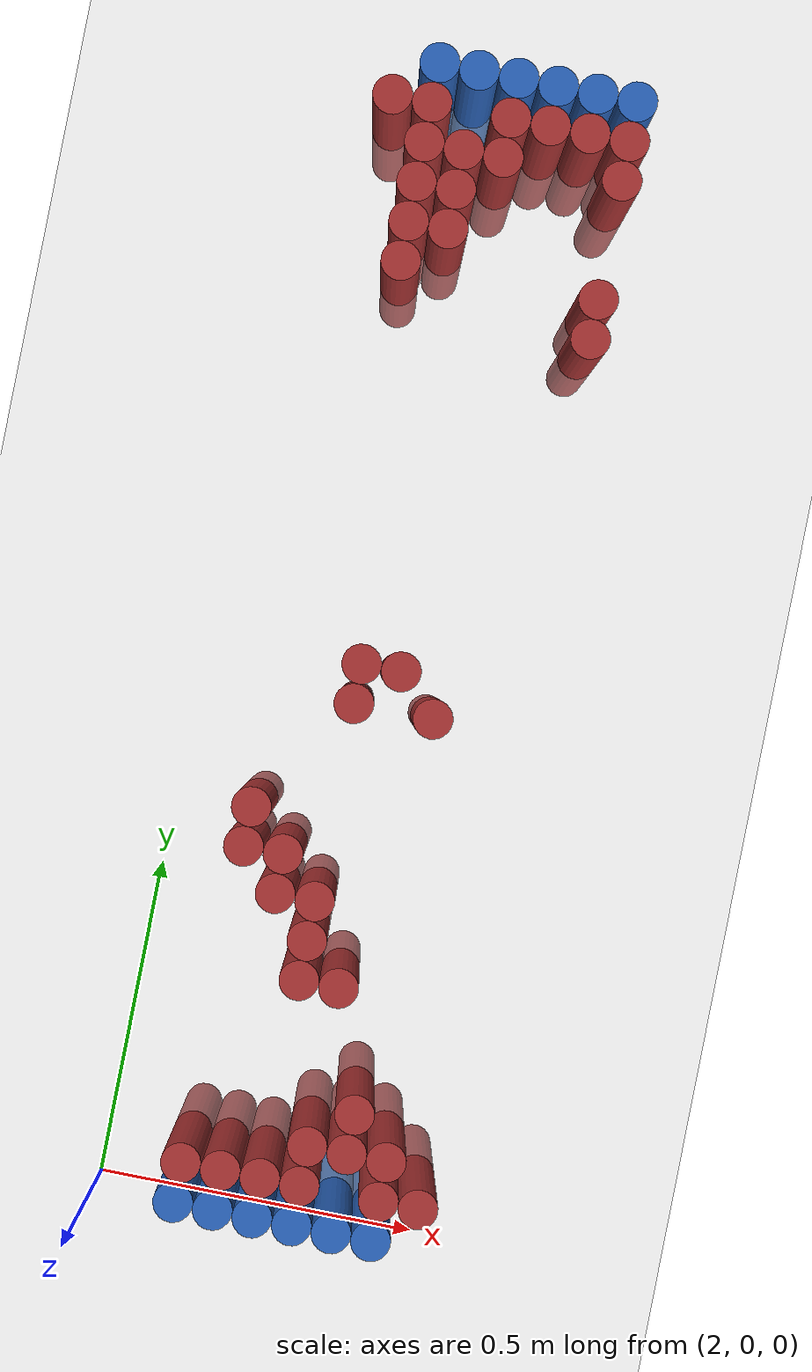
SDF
<sdf version="1.6">
 <world name="default">
  <model name="ground_plane">
   <static>1</static>
   <link name="link">
    <collision name="collision">
     <geometry><plane><normal>0 0 1</normal><size>100 100</size></plane></geometry>
     <surface><friction><ode><mu>100</mu><mu2>50</mu2></ode></friction></surface>
    </collision>
    <visual name="visual">
     <cast_shadows>0</cast_shadows>
     <geometry><plane><normal>0 0 1</normal><size>100 100</size></plane></geometry>
     <material>
      <script><uri>file://media/materials/scripts/gazebo.material</uri><name>Gazebo/Grey</name></script>
     </material>
    </visual>
   </link>
  </model>
  <model name="unit_cylinder_97">
   <static>1</static>
   <pose>2.190000 1.770000 0.000000 0.000000 0.000000 0.000000</pose>
   <link name="link">
    <inertial>
     <mass>1</mass>
     <inertia><ixx>0.145833</ixx><ixy>0</ixy><ixz>0</ixz><iyy>0.145833</iyy><iyz>0</iyz><izz>0.125</izz></inertia>
    </inertial>
    <collision name="collision">
     <geometry><cylinder><radius>0.030000</radius><length>0.5</length></cylinder></geometry>
    </collision>
    <visual name="visual">
     <geometry><cylinder><radius>0.030000</radius><length>0.5</length></cylinder></geometry>
     <material>
      <ambient>0.152000 0.379000 0.720000 1</ambient>
      <diffuse>0.152000 0.379000 0.720000 1</diffuse>
     </material>
     <material>
      <script><name>Gazebo/Grey</name><uri>file://media/materials/scripts/gazebo.material</uri></script>
     </material>
    </visual>
   </link>
  </model>
  <model name="unit_cylinder_98">
   <static>1</static>
   <pose>2.250000 1.770000 0.000000 0.000000 0.000000 0.000000</pose>
   <link name="link">
    <inertial>
     <mass>1</mass>
     <inertia><ixx>0.145833</ixx><ixy>0</ixy><ixz>0</ixz><iyy>0.145833</iyy><iyz>0</iyz><izz>0.125</izz></inertia>
    </inertial>
    <collision name="collision">
     <geometry><cylinder><radius>0.030000</radius><length>0.5</length></cylinder></geometry>
    </collision>
    <visual name="visual">
     <geometry><cylinder><radius>0.030000</radius><length>0.5</length></cylinder></geometry>
     <material>
      <ambient>0.152000 0.379000 0.720000 1</ambient>
      <diffuse>0.152000 0.379000 0.720000 1</diffuse>
     </material>
     <material>
      <script><name>Gazebo/Grey</name><uri>file://media/materials/scripts/gazebo.material</uri></script>
     </material>
    </visual>
   </link>
  </model>
  <model name="unit_cylinder_99">
   <static>1</static>
   <pose>2.310000 1.770000 0.000000 0.000000 0.000000 0.000000</pose>
   <link name="link">
    <inertial>
     <mass>1</mass>
     <inertia><ixx>0.145833</ixx><ixy>0</ixy><ixz>0</ixz><iyy>0.145833</iyy><iyz>0</iyz><izz>0.125</izz></inertia>
    </inertial>
    <collision name="collision">
     <geometry><cylinder><radius>0.030000</radius><length>0.5</length></cylinder></geometry>
    </collision>
    <visual name="visual">
     <geometry><cylinder><radius>0.030000</radius><length>0.5</length></cylinder></geometry>
     <material>
      <ambient>0.152000 0.379000 0.720000 1</ambient>
      <diffuse>0.152000 0.379000 0.720000 1</diffuse>
     </material>
     <material>
      <script><name>Gazebo/Grey</name><uri>file://media/materials/scripts/gazebo.material</uri></script>
     </material>
    </visual>
   </link>
  </model>
  <model name="unit_cylinder_100">
   <static>1</static>
   <pose>2.370000 1.770000 0.000000 0.000000 0.000000 0.000000</pose>
   <link name="link">
    <inertial>
     <mass>1</mass>
     <inertia><ixx>0.145833</ixx><ixy>0</ixy><ixz>0</ixz><iyy>0.145833</iyy><iyz>0</iyz><izz>0.125</izz></inertia>
    </inertial>
    <collision name="collision">
     <geometry><cylinder><radius>0.030000</radius><length>0.5</length></cylinder></geometry>
    </collision>
    <visual name="visual">
     <geometry><cylinder><radius>0.030000</radius><length>0.5</length></cylinder></geometry>
     <material>
      <ambient>0.152000 0.379000 0.720000 1</ambient>
      <diffuse>0.152000 0.379000 0.720000 1</diffuse>
     </material>
     <material>
      <script><name>Gazebo/Grey</name><uri>file://media/materials/scripts/gazebo.material</uri></script>
     </material>
    </visual>
   </link>
  </model>
  <model name="unit_cylinder_101">
   <static>1</static>
   <pose>2.430000 1.770000 0.000000 0.000000 0.000000 0.000000</pose>
   <link name="link">
    <inertial>
     <mass>1</mass>
     <inertia><ixx>0.145833</ixx><ixy>0</ixy><ixz>0</ixz><iyy>0.145833</iyy><iyz>0</iyz><izz>0.125</izz></inertia>
    </inertial>
    <collision name="collision">
     <geometry><cylinder><radius>0.030000</radius><length>0.5</length></cylinder></geometry>
    </collision>
    <visual name="visual">
     <geometry><cylinder><radius>0.030000</radius><length>0.5</length></cylinder></geometry>
     <material>
      <ambient>0.152000 0.379000 0.720000 1</ambient>
      <diffuse>0.152000 0.379000 0.720000 1</diffuse>
     </material>
     <material>
      <script><name>Gazebo/Grey</name><uri>file://media/materials/scripts/gazebo.material</uri></script>
     </material>
    </visual>
   </link>
  </model>
  <model name="unit_cylinder_102">
   <static>1</static>
   <pose>2.490000 1.770000 0.000000 0.000000 0.000000 0.000000</pose>
   <link name="link">
    <inertial>
     <mass>1</mass>
     <inertia><ixx>0.145833</ixx><ixy>0</ixy><ixz>0</ixz><iyy>0.145833</iyy><iyz>0</iyz><izz>0.125</izz></inertia>
    </inertial>
    <collision name="collision">
     <geometry><cylinder><radius>0.030000</radius><length>0.5</length></cylinder></geometry>
    </collision>
    <visual name="visual">
     <geometry><cylinder><radius>0.030000</radius><length>0.5</length></cylinder></geometry>
     <material>
      <ambient>0.152000 0.379000 0.720000 1</ambient>
      <diffuse>0.152000 0.379000 0.720000 1</diffuse>
     </material>
     <material>
      <script><name>Gazebo/Grey</name><uri>file://media/materials/scripts/gazebo.material</uri></script>
     </material>
    </visual>
   </link>
  </model>
  <model name="unit_cylinder_125">
   <static>1</static>
   <pose>2.130000 1.710000 0.000000 0.000000 0.000000 0.000000</pose>
   <link name="link">
    <inertial>
     <mass>1</mass>
     <inertia><ixx>0.145833</ixx><ixy>0</ixy><ixz>0</ixz><iyy>0.145833</iyy><iyz>0</iyz><izz>0.125</izz></inertia>
    </inertial>
    <collision name="collision">
     <geometry><cylinder><radius>0.030000</radius><length>0.5</length></cylinder></geometry>
    </collision>
    <visual name="visual">
     <geometry><cylinder><radius>0.030000</radius><length>0.5</length></cylinder></geometry>
     <material>
      <ambient>0.648000 0.192000 0.192000 1</ambient>
      <diffuse>0.648000 0.192000 0.192000 1</diffuse>
     </material>
     <material>
      <script><name>Gazebo/Grey</name><uri>file://media/materials/scripts/gazebo.material</uri></script>
     </material>
    </visual>
   </link>
  </model>
  <model name="unit_cylinder_126">
   <static>1</static>
   <pose>2.190000 1.710000 0.000000 0.000000 0.000000 0.000000</pose>
   <link name="link">
    <inertial>
     <mass>1</mass>
     <inertia><ixx>0.145833</ixx><ixy>0</ixy><ixz>0</ixz><iyy>0.145833</iyy><iyz>0</iyz><izz>0.125</izz></inertia>
    </inertial>
    <collision name="collision">
     <geometry><cylinder><radius>0.030000</radius><length>0.5</length></cylinder></geometry>
    </collision>
    <visual name="visual">
     <geometry><cylinder><radius>0.030000</radius><length>0.5</length></cylinder></geometry>
     <material>
      <ambient>0.648000 0.192000 0.192000 1</ambient>
      <diffuse>0.648000 0.192000 0.192000 1</diffuse>
     </material>
     <material>
      <script><name>Gazebo/Grey</name><uri>file://media/materials/scripts/gazebo.material</uri></script>
     </material>
    </visual>
   </link>
  </model>
  <model name="unit_cylinder_127">
   <static>1</static>
   <pose>2.310000 1.710000 0.000000 0.000000 0.000000 0.000000</pose>
   <link name="link">
    <inertial>
     <mass>1</mass>
     <inertia><ixx>0.145833</ixx><ixy>0</ixy><ixz>0</ixz><iyy>0.145833</iyy><iyz>0</iyz><izz>0.125</izz></inertia>
    </inertial>
    <collision name="collision">
     <geometry><cylinder><radius>0.030000</radius><length>0.5</length></cylinder></geometry>
    </collision>
    <visual name="visual">
     <geometry><cylinder><radius>0.030000</radius><length>0.5</length></cylinder></geometry>
     <material>
      <ambient>0.648000 0.192000 0.192000 1</ambient>
      <diffuse>0.648000 0.192000 0.192000 1</diffuse>
     </material>
     <material>
      <script><name>Gazebo/Grey</name><uri>file://media/materials/scripts/gazebo.material</uri></script>
     </material>
    </visual>
   </link>
  </model>
  <model name="unit_cylinder_128">
   <static>1</static>
   <pose>2.370000 1.710000 0.000000 0.000000 0.000000 0.000000</pose>
   <link name="link">
    <inertial>
     <mass>1</mass>
     <inertia><ixx>0.145833</ixx><ixy>0</ixy><ixz>0</ixz><iyy>0.145833</iyy><iyz>0</iyz><izz>0.125</izz></inertia>
    </inertial>
    <collision name="collision">
     <geometry><cylinder><radius>0.030000</radius><length>0.5</length></cylinder></geometry>
    </collision>
    <visual name="visual">
     <geometry><cylinder><radius>0.030000</radius><length>0.5</length></cylinder></geometry>
     <material>
      <ambient>0.648000 0.192000 0.192000 1</ambient>
      <diffuse>0.648000 0.192000 0.192000 1</diffuse>
     </material>
     <material>
      <script><name>Gazebo/Grey</name><uri>file://media/materials/scripts/gazebo.material</uri></script>
     </material>
    </visual>
   </link>
  </model>
  <model name="unit_cylinder_129">
   <static>1</static>
   <pose>2.430000 1.710000 0.000000 0.000000 0.000000 0.000000</pose>
   <link name="link">
    <inertial>
     <mass>1</mass>
     <inertia><ixx>0.145833</ixx><ixy>0</ixy><ixz>0</ixz><iyy>0.145833</iyy><iyz>0</iyz><izz>0.125</izz></inertia>
    </inertial>
    <collision name="collision">
     <geometry><cylinder><radius>0.030000</radius><length>0.5</length></cylinder></geometry>
    </collision>
    <visual name="visual">
     <geometry><cylinder><radius>0.030000</radius><length>0.5</length></cylinder></geometry>
     <material>
      <ambient>0.648000 0.192000 0.192000 1</ambient>
      <diffuse>0.648000 0.192000 0.192000 1</diffuse>
     </material>
     <material>
      <script><name>Gazebo/Grey</name><uri>file://media/materials/scripts/gazebo.material</uri></script>
     </material>
    </visual>
   </link>
  </model>
  <model name="unit_cylinder_130">
   <static>1</static>
   <pose>2.490000 1.710000 0.000000 0.000000 0.000000 0.000000</pose>
   <link name="link">
    <inertial>
     <mass>1</mass>
     <inertia><ixx>0.145833</ixx><ixy>0</ixy><ixz>0</ixz><iyy>0.145833</iyy><iyz>0</iyz><izz>0.125</izz></inertia>
    </inertial>
    <collision name="collision">
     <geometry><cylinder><radius>0.030000</radius><length>0.5</length></cylinder></geometry>
    </collision>
    <visual name="visual">
     <geometry><cylinder><radius>0.030000</radius><length>0.5</length></cylinder></geometry>
     <material>
      <ambient>0.648000 0.192000 0.192000 1</ambient>
      <diffuse>0.648000 0.192000 0.192000 1</diffuse>
     </material>
     <material>
      <script><name>Gazebo/Grey</name><uri>file://media/materials/scripts/gazebo.material</uri></script>
     </material>
    </visual>
   </link>
  </model>
  <model name="unit_cylinder_146">
   <static>1</static>
   <pose>2.190000 1.650000 0.000000 0.000000 0.000000 0.000000</pose>
   <link name="link">
    <inertial>
     <mass>1</mass>
     <inertia><ixx>0.145833</ixx><ixy>0</ixy><ixz>0</ixz><iyy>0.145833</iyy><iyz>0</iyz><izz>0.125</izz></inertia>
    </inertial>
    <collision name="collision">
     <geometry><cylinder><radius>0.030000</radius><length>0.5</length></cylinder></geometry>
    </collision>
    <visual name="visual">
     <geometry><cylinder><radius>0.030000</radius><length>0.5</length></cylinder></geometry>
     <material>
      <ambient>0.648000 0.192000 0.192000 1</ambient>
      <diffuse>0.648000 0.192000 0.192000 1</diffuse>
     </material>
     <material>
      <script><name>Gazebo/Grey</name><uri>file://media/materials/scripts/gazebo.material</uri></script>
     </material>
    </visual>
   </link>
  </model>
  <model name="unit_cylinder_147">
   <static>1</static>
   <pose>2.250000 1.650000 0.000000 0.000000 0.000000 0.000000</pose>
   <link name="link">
    <inertial>
     <mass>1</mass>
     <inertia><ixx>0.145833</ixx><ixy>0</ixy><ixz>0</ixz><iyy>0.145833</iyy><iyz>0</iyz><izz>0.125</izz></inertia>
    </inertial>
    <collision name="collision">
     <geometry><cylinder><radius>0.030000</radius><length>0.5</length></cylinder></geometry>
    </collision>
    <visual name="visual">
     <geometry><cylinder><radius>0.030000</radius><length>0.5</length></cylinder></geometry>
     <material>
      <ambient>0.648000 0.192000 0.192000 1</ambient>
      <diffuse>0.648000 0.192000 0.192000 1</diffuse>
     </material>
     <material>
      <script><name>Gazebo/Grey</name><uri>file://media/materials/scripts/gazebo.material</uri></script>
     </material>
    </visual>
   </link>
  </model>
  <model name="unit_cylinder_148">
   <static>1</static>
   <pose>2.310000 1.650000 0.000000 0.000000 0.000000 0.000000</pose>
   <link name="link">
    <inertial>
     <mass>1</mass>
     <inertia><ixx>0.145833</ixx><ixy>0</ixy><ixz>0</ixz><iyy>0.145833</iyy><iyz>0</iyz><izz>0.125</izz></inertia>
    </inertial>
    <collision name="collision">
     <geometry><cylinder><radius>0.030000</radius><length>0.5</length></cylinder></geometry>
    </collision>
    <visual name="visual">
     <geometry><cylinder><radius>0.030000</radius><length>0.5</length></cylinder></geometry>
     <material>
      <ambient>0.648000 0.192000 0.192000 1</ambient>
      <diffuse>0.648000 0.192000 0.192000 1</diffuse>
     </material>
     <material>
      <script><name>Gazebo/Grey</name><uri>file://media/materials/scripts/gazebo.material</uri></script>
     </material>
    </visual>
   </link>
  </model>
  <model name="unit_cylinder_149">
   <static>1</static>
   <pose>2.490000 1.650000 0.000000 0.000000 0.000000 0.000000</pose>
   <link name="link">
    <inertial>
     <mass>1</mass>
     <inertia><ixx>0.145833</ixx><ixy>0</ixy><ixz>0</ixz><iyy>0.145833</iyy><iyz>0</iyz><izz>0.125</izz></inertia>
    </inertial>
    <collision name="collision">
     <geometry><cylinder><radius>0.030000</radius><length>0.5</length></cylinder></geometry>
    </collision>
    <visual name="visual">
     <geometry><cylinder><radius>0.030000</radius><length>0.5</length></cylinder></geometry>
     <material>
      <ambient>0.648000 0.192000 0.192000 1</ambient>
      <diffuse>0.648000 0.192000 0.192000 1</diffuse>
     </material>
     <material>
      <script><name>Gazebo/Grey</name><uri>file://media/materials/scripts/gazebo.material</uri></script>
     </material>
    </visual>
   </link>
  </model>
  <model name="unit_cylinder_157">
   <static>1</static>
   <pose>2.190000 1.590000 0.000000 0.000000 0.000000 0.000000</pose>
   <link name="link">
    <inertial>
     <mass>1</mass>
     <inertia><ixx>0.145833</ixx><ixy>0</ixy><ixz>0</ixz><iyy>0.145833</iyy><iyz>0</iyz><izz>0.125</izz></inertia>
    </inertial>
    <collision name="collision">
     <geometry><cylinder><radius>0.030000</radius><length>0.5</length></cylinder></geometry>
    </collision>
    <visual name="visual">
     <geometry><cylinder><radius>0.030000</radius><length>0.5</length></cylinder></geometry>
     <material>
      <ambient>0.648000 0.192000 0.192000 1</ambient>
      <diffuse>0.648000 0.192000 0.192000 1</diffuse>
     </material>
     <material>
      <script><name>Gazebo/Grey</name><uri>file://media/materials/scripts/gazebo.material</uri></script>
     </material>
    </visual>
   </link>
  </model>
  <model name="unit_cylinder_158">
   <static>1</static>
   <pose>2.250000 1.590000 0.000000 0.000000 0.000000 0.000000</pose>
   <link name="link">
    <inertial>
     <mass>1</mass>
     <inertia><ixx>0.145833</ixx><ixy>0</ixy><ixz>0</ixz><iyy>0.145833</iyy><iyz>0</iyz><izz>0.125</izz></inertia>
    </inertial>
    <collision name="collision">
     <geometry><cylinder><radius>0.030000</radius><length>0.5</length></cylinder></geometry>
    </collision>
    <visual name="visual">
     <geometry><cylinder><radius>0.030000</radius><length>0.5</length></cylinder></geometry>
     <material>
      <ambient>0.648000 0.192000 0.192000 1</ambient>
      <diffuse>0.648000 0.192000 0.192000 1</diffuse>
     </material>
     <material>
      <script><name>Gazebo/Grey</name><uri>file://media/materials/scripts/gazebo.material</uri></script>
     </material>
    </visual>
   </link>
  </model>
  <model name="unit_cylinder_165">
   <static>1</static>
   <pose>2.190000 1.530000 0.000000 0.000000 0.000000 0.000000</pose>
   <link name="link">
    <inertial>
     <mass>1</mass>
     <inertia><ixx>0.145833</ixx><ixy>0</ixy><ixz>0</ixz><iyy>0.145833</iyy><iyz>0</iyz><izz>0.125</izz></inertia>
    </inertial>
    <collision name="collision">
     <geometry><cylinder><radius>0.030000</radius><length>0.5</length></cylinder></geometry>
    </collision>
    <visual name="visual">
     <geometry><cylinder><radius>0.030000</radius><length>0.5</length></cylinder></geometry>
     <material>
      <ambient>0.648000 0.192000 0.192000 1</ambient>
      <diffuse>0.648000 0.192000 0.192000 1</diffuse>
     </material>
     <material>
      <script><name>Gazebo/Grey</name><uri>file://media/materials/scripts/gazebo.material</uri></script>
     </material>
    </visual>
   </link>
  </model>
  <model name="unit_cylinder_166">
   <static>1</static>
   <pose>2.250000 1.530000 0.000000 0.000000 0.000000 0.000000</pose>
   <link name="link">
    <inertial>
     <mass>1</mass>
     <inertia><ixx>0.145833</ixx><ixy>0</ixy><ixz>0</ixz><iyy>0.145833</iyy><iyz>0</iyz><izz>0.125</izz></inertia>
    </inertial>
    <collision name="collision">
     <geometry><cylinder><radius>0.030000</radius><length>0.5</length></cylinder></geometry>
    </collision>
    <visual name="visual">
     <geometry><cylinder><radius>0.030000</radius><length>0.5</length></cylinder></geometry>
     <material>
      <ambient>0.648000 0.192000 0.192000 1</ambient>
      <diffuse>0.648000 0.192000 0.192000 1</diffuse>
     </material>
     <material>
      <script><name>Gazebo/Grey</name><uri>file://media/materials/scripts/gazebo.material</uri></script>
     </material>
    </visual>
   </link>
  </model>
  <model name="unit_cylinder_170">
   <static>1</static>
   <pose>2.190000 1.470000 0.000000 0.000000 0.000000 0.000000</pose>
   <link name="link">
    <inertial>
     <mass>1</mass>
     <inertia><ixx>0.145833</ixx><ixy>0</ixy><ixz>0</ixz><iyy>0.145833</iyy><iyz>0</iyz><izz>0.125</izz></inertia>
    </inertial>
    <collision name="collision">
     <geometry><cylinder><radius>0.030000</radius><length>0.5</length></cylinder></geometry>
    </collision>
    <visual name="visual">
     <geometry><cylinder><radius>0.030000</radius><length>0.5</length></cylinder></geometry>
     <material>
      <ambient>0.648000 0.192000 0.192000 1</ambient>
      <diffuse>0.648000 0.192000 0.192000 1</diffuse>
     </material>
     <material>
      <script><name>Gazebo/Grey</name><uri>file://media/materials/scripts/gazebo.material</uri></script>
     </material>
    </visual>
   </link>
  </model>
  <model name="unit_cylinder_171">
   <static>1</static>
   <pose>2.490000 1.470000 0.000000 0.000000 0.000000 0.000000</pose>
   <link name="link">
    <inertial>
     <mass>1</mass>
     <inertia><ixx>0.145833</ixx><ixy>0</ixy><ixz>0</ixz><iyy>0.145833</iyy><iyz>0</iyz><izz>0.125</izz></inertia>
    </inertial>
    <collision name="collision">
     <geometry><cylinder><radius>0.030000</radius><length>0.5</length></cylinder></geometry>
    </collision>
    <visual name="visual">
     <geometry><cylinder><radius>0.030000</radius><length>0.5</length></cylinder></geometry>
     <material>
      <ambient>0.648000 0.192000 0.192000 1</ambient>
      <diffuse>0.648000 0.192000 0.192000 1</diffuse>
     </material>
     <material>
      <script><name>Gazebo/Grey</name><uri>file://media/materials/scripts/gazebo.material</uri></script>
     </material>
    </visual>
   </link>
  </model>
  <model name="unit_cylinder_176">
   <static>1</static>
   <pose>2.490000 1.410000 0.000000 0.000000 0.000000 0.000000</pose>
   <link name="link">
    <inertial>
     <mass>1</mass>
     <inertia><ixx>0.145833</ixx><ixy>0</ixy><ixz>0</ixz><iyy>0.145833</iyy><iyz>0</iyz><izz>0.125</izz></inertia>
    </inertial>
    <collision name="collision">
     <geometry><cylinder><radius>0.030000</radius><length>0.5</length></cylinder></geometry>
    </collision>
    <visual name="visual">
     <geometry><cylinder><radius>0.030000</radius><length>0.5</length></cylinder></geometry>
     <material>
      <ambient>0.648000 0.192000 0.192000 1</ambient>
      <diffuse>0.648000 0.192000 0.192000 1</diffuse>
     </material>
     <material>
      <script><name>Gazebo/Grey</name><uri>file://media/materials/scripts/gazebo.material</uri></script>
     </material>
    </visual>
   </link>
  </model>
  <model name="unit_cylinder_213">
   <static>1</static>
   <pose>2.250000 0.870000 0.000000 0.000000 0.000000 0.000000</pose>
   <link name="link">
    <inertial>
     <mass>1</mass>
     <inertia><ixx>0.145833</ixx><ixy>0</ixy><ixz>0</ixz><iyy>0.145833</iyy><iyz>0</iyz><izz>0.125</izz></inertia>
    </inertial>
    <collision name="collision">
     <geometry><cylinder><radius>0.030000</radius><length>0.5</length></cylinder></geometry>
    </collision>
    <visual name="visual">
     <geometry><cylinder><radius>0.030000</radius><length>0.5</length></cylinder></geometry>
     <material>
      <ambient>0.648000 0.192000 0.192000 1</ambient>
      <diffuse>0.648000 0.192000 0.192000 1</diffuse>
     </material>
     <material>
      <script><name>Gazebo/Grey</name><uri>file://media/materials/scripts/gazebo.material</uri></script>
     </material>
    </visual>
   </link>
  </model>
  <model name="unit_cylinder_214">
   <static>1</static>
   <pose>2.310000 0.870000 0.000000 0.000000 0.000000 0.000000</pose>
   <link name="link">
    <inertial>
     <mass>1</mass>
     <inertia><ixx>0.145833</ixx><ixy>0</ixy><ixz>0</ixz><iyy>0.145833</iyy><iyz>0</iyz><izz>0.125</izz></inertia>
    </inertial>
    <collision name="collision">
     <geometry><cylinder><radius>0.030000</radius><length>0.5</length></cylinder></geometry>
    </collision>
    <visual name="visual">
     <geometry><cylinder><radius>0.030000</radius><length>0.5</length></cylinder></geometry>
     <material>
      <ambient>0.648000 0.192000 0.192000 1</ambient>
      <diffuse>0.648000 0.192000 0.192000 1</diffuse>
     </material>
     <material>
      <script><name>Gazebo/Grey</name><uri>file://media/materials/scripts/gazebo.material</uri></script>
     </material>
    </visual>
   </link>
  </model>
  <model name="unit_cylinder_220">
   <static>1</static>
   <pose>2.250000 0.810000 0.000000 0.000000 0.000000 0.000000</pose>
   <link name="link">
    <inertial>
     <mass>1</mass>
     <inertia><ixx>0.145833</ixx><ixy>0</ixy><ixz>0</ixz><iyy>0.145833</iyy><iyz>0</iyz><izz>0.125</izz></inertia>
    </inertial>
    <collision name="collision">
     <geometry><cylinder><radius>0.030000</radius><length>0.5</length></cylinder></geometry>
    </collision>
    <visual name="visual">
     <geometry><cylinder><radius>0.030000</radius><length>0.5</length></cylinder></geometry>
     <material>
      <ambient>0.648000 0.192000 0.192000 1</ambient>
      <diffuse>0.648000 0.192000 0.192000 1</diffuse>
     </material>
     <material>
      <script><name>Gazebo/Grey</name><uri>file://media/materials/scripts/gazebo.material</uri></script>
     </material>
    </visual>
   </link>
  </model>
  <model name="unit_cylinder_221">
   <static>1</static>
   <pose>2.370000 0.810000 0.000000 0.000000 0.000000 0.000000</pose>
   <link name="link">
    <inertial>
     <mass>1</mass>
     <inertia><ixx>0.145833</ixx><ixy>0</ixy><ixz>0</ixz><iyy>0.145833</iyy><iyz>0</iyz><izz>0.125</izz></inertia>
    </inertial>
    <collision name="collision">
     <geometry><cylinder><radius>0.030000</radius><length>0.5</length></cylinder></geometry>
    </collision>
    <visual name="visual">
     <geometry><cylinder><radius>0.030000</radius><length>0.5</length></cylinder></geometry>
     <material>
      <ambient>0.648000 0.192000 0.192000 1</ambient>
      <diffuse>0.648000 0.192000 0.192000 1</diffuse>
     </material>
     <material>
      <script><name>Gazebo/Grey</name><uri>file://media/materials/scripts/gazebo.material</uri></script>
     </material>
    </visual>
   </link>
  </model>
  <model name="unit_cylinder_226">
   <static>1</static>
   <pose>2.130000 0.630000 0.000000 0.000000 0.000000 0.000000</pose>
   <link name="link">
    <inertial>
     <mass>1</mass>
     <inertia><ixx>0.145833</ixx><ixy>0</ixy><ixz>0</ixz><iyy>0.145833</iyy><iyz>0</iyz><izz>0.125</izz></inertia>
    </inertial>
    <collision name="collision">
     <geometry><cylinder><radius>0.030000</radius><length>0.5</length></cylinder></geometry>
    </collision>
    <visual name="visual">
     <geometry><cylinder><radius>0.030000</radius><length>0.5</length></cylinder></geometry>
     <material>
      <ambient>0.648000 0.192000 0.192000 1</ambient>
      <diffuse>0.648000 0.192000 0.192000 1</diffuse>
     </material>
     <material>
      <script><name>Gazebo/Grey</name><uri>file://media/materials/scripts/gazebo.material</uri></script>
     </material>
    </visual>
   </link>
  </model>
  <model name="unit_cylinder_228">
   <static>1</static>
   <pose>2.130000 0.570000 0.000000 0.000000 0.000000 0.000000</pose>
   <link name="link">
    <inertial>
     <mass>1</mass>
     <inertia><ixx>0.145833</ixx><ixy>0</ixy><ixz>0</ixz><iyy>0.145833</iyy><iyz>0</iyz><izz>0.125</izz></inertia>
    </inertial>
    <collision name="collision">
     <geometry><cylinder><radius>0.030000</radius><length>0.5</length></cylinder></geometry>
    </collision>
    <visual name="visual">
     <geometry><cylinder><radius>0.030000</radius><length>0.5</length></cylinder></geometry>
     <material>
      <ambient>0.648000 0.192000 0.192000 1</ambient>
      <diffuse>0.648000 0.192000 0.192000 1</diffuse>
     </material>
     <material>
      <script><name>Gazebo/Grey</name><uri>file://media/materials/scripts/gazebo.material</uri></script>
     </material>
    </visual>
   </link>
  </model>
  <model name="unit_cylinder_229">
   <static>1</static>
   <pose>2.190000 0.570000 0.000000 0.000000 0.000000 0.000000</pose>
   <link name="link">
    <inertial>
     <mass>1</mass>
     <inertia><ixx>0.145833</ixx><ixy>0</ixy><ixz>0</ixz><iyy>0.145833</iyy><iyz>0</iyz><izz>0.125</izz></inertia>
    </inertial>
    <collision name="collision">
     <geometry><cylinder><radius>0.030000</radius><length>0.5</length></cylinder></geometry>
    </collision>
    <visual name="visual">
     <geometry><cylinder><radius>0.030000</radius><length>0.5</length></cylinder></geometry>
     <material>
      <ambient>0.648000 0.192000 0.192000 1</ambient>
      <diffuse>0.648000 0.192000 0.192000 1</diffuse>
     </material>
     <material>
      <script><name>Gazebo/Grey</name><uri>file://media/materials/scripts/gazebo.material</uri></script>
     </material>
    </visual>
   </link>
  </model>
  <model name="unit_cylinder_231">
   <static>1</static>
   <pose>2.190000 0.510000 0.000000 0.000000 0.000000 0.000000</pose>
   <link name="link">
    <inertial>
     <mass>1</mass>
     <inertia><ixx>0.145833</ixx><ixy>0</ixy><ixz>0</ixz><iyy>0.145833</iyy><iyz>0</iyz><izz>0.125</izz></inertia>
    </inertial>
    <collision name="collision">
     <geometry><cylinder><radius>0.030000</radius><length>0.5</length></cylinder></geometry>
    </collision>
    <visual name="visual">
     <geometry><cylinder><radius>0.030000</radius><length>0.5</length></cylinder></geometry>
     <material>
      <ambient>0.648000 0.192000 0.192000 1</ambient>
      <diffuse>0.648000 0.192000 0.192000 1</diffuse>
     </material>
     <material>
      <script><name>Gazebo/Grey</name><uri>file://media/materials/scripts/gazebo.material</uri></script>
     </material>
    </visual>
   </link>
  </model>
  <model name="unit_cylinder_232">
   <static>1</static>
   <pose>2.250000 0.510000 0.000000 0.000000 0.000000 0.000000</pose>
   <link name="link">
    <inertial>
     <mass>1</mass>
     <inertia><ixx>0.145833</ixx><ixy>0</ixy><ixz>0</ixz><iyy>0.145833</iyy><iyz>0</iyz><izz>0.125</izz></inertia>
    </inertial>
    <collision name="collision">
     <geometry><cylinder><radius>0.030000</radius><length>0.5</length></cylinder></geometry>
    </collision>
    <visual name="visual">
     <geometry><cylinder><radius>0.030000</radius><length>0.5</length></cylinder></geometry>
     <material>
      <ambient>0.648000 0.192000 0.192000 1</ambient>
      <diffuse>0.648000 0.192000 0.192000 1</diffuse>
     </material>
     <material>
      <script><name>Gazebo/Grey</name><uri>file://media/materials/scripts/gazebo.material</uri></script>
     </material>
    </visual>
   </link>
  </model>
  <model name="unit_cylinder_235">
   <static>1</static>
   <pose>2.250000 0.450000 0.000000 0.000000 0.000000 0.000000</pose>
   <link name="link">
    <inertial>
     <mass>1</mass>
     <inertia><ixx>0.145833</ixx><ixy>0</ixy><ixz>0</ixz><iyy>0.145833</iyy><iyz>0</iyz><izz>0.125</izz></inertia>
    </inertial>
    <collision name="collision">
     <geometry><cylinder><radius>0.030000</radius><length>0.5</length></cylinder></geometry>
    </collision>
    <visual name="visual">
     <geometry><cylinder><radius>0.030000</radius><length>0.5</length></cylinder></geometry>
     <material>
      <ambient>0.648000 0.192000 0.192000 1</ambient>
      <diffuse>0.648000 0.192000 0.192000 1</diffuse>
     </material>
     <material>
      <script><name>Gazebo/Grey</name><uri>file://media/materials/scripts/gazebo.material</uri></script>
     </material>
    </visual>
   </link>
  </model>
  <model name="unit_cylinder_238">
   <static>1</static>
   <pose>2.250000 0.390000 0.000000 0.000000 0.000000 0.000000</pose>
   <link name="link">
    <inertial>
     <mass>1</mass>
     <inertia><ixx>0.145833</ixx><ixy>0</ixy><ixz>0</ixz><iyy>0.145833</iyy><iyz>0</iyz><izz>0.125</izz></inertia>
    </inertial>
    <collision name="collision">
     <geometry><cylinder><radius>0.030000</radius><length>0.5</length></cylinder></geometry>
    </collision>
    <visual name="visual">
     <geometry><cylinder><radius>0.030000</radius><length>0.5</length></cylinder></geometry>
     <material>
      <ambient>0.648000 0.192000 0.192000 1</ambient>
      <diffuse>0.648000 0.192000 0.192000 1</diffuse>
     </material>
     <material>
      <script><name>Gazebo/Grey</name><uri>file://media/materials/scripts/gazebo.material</uri></script>
     </material>
    </visual>
   </link>
  </model>
  <model name="unit_cylinder_239">
   <static>1</static>
   <pose>2.310000 0.390000 0.000000 0.000000 0.000000 0.000000</pose>
   <link name="link">
    <inertial>
     <mass>1</mass>
     <inertia><ixx>0.145833</ixx><ixy>0</ixy><ixz>0</ixz><iyy>0.145833</iyy><iyz>0</iyz><izz>0.125</izz></inertia>
    </inertial>
    <collision name="collision">
     <geometry><cylinder><radius>0.030000</radius><length>0.5</length></cylinder></geometry>
    </collision>
    <visual name="visual">
     <geometry><cylinder><radius>0.030000</radius><length>0.5</length></cylinder></geometry>
     <material>
      <ambient>0.648000 0.192000 0.192000 1</ambient>
      <diffuse>0.648000 0.192000 0.192000 1</diffuse>
     </material>
     <material>
      <script><name>Gazebo/Grey</name><uri>file://media/materials/scripts/gazebo.material</uri></script>
     </material>
    </visual>
   </link>
  </model>
  <model name="unit_cylinder_245">
   <static>1</static>
   <pose>2.370000 0.210000 0.000000 0.000000 0.000000 0.000000</pose>
   <link name="link">
    <inertial>
     <mass>1</mass>
     <inertia><ixx>0.145833</ixx><ixy>0</ixy><ixz>0</ixz><iyy>0.145833</iyy><iyz>0</iyz><izz>0.125</izz></inertia>
    </inertial>
    <collision name="collision">
     <geometry><cylinder><radius>0.030000</radius><length>0.5</length></cylinder></geometry>
    </collision>
    <visual name="visual">
     <geometry><cylinder><radius>0.030000</radius><length>0.5</length></cylinder></geometry>
     <material>
      <ambient>0.648000 0.192000 0.192000 1</ambient>
      <diffuse>0.648000 0.192000 0.192000 1</diffuse>
     </material>
     <material>
      <script><name>Gazebo/Grey</name><uri>file://media/materials/scripts/gazebo.material</uri></script>
     </material>
    </visual>
   </link>
  </model>
  <model name="unit_cylinder_248">
   <static>1</static>
   <pose>2.310000 0.150000 0.000000 0.000000 0.000000 0.000000</pose>
   <link name="link">
    <inertial>
     <mass>1</mass>
     <inertia><ixx>0.145833</ixx><ixy>0</ixy><ixz>0</ixz><iyy>0.145833</iyy><iyz>0</iyz><izz>0.125</izz></inertia>
    </inertial>
    <collision name="collision">
     <geometry><cylinder><radius>0.030000</radius><length>0.5</length></cylinder></geometry>
    </collision>
    <visual name="visual">
     <geometry><cylinder><radius>0.030000</radius><length>0.5</length></cylinder></geometry>
     <material>
      <ambient>0.648000 0.192000 0.192000 1</ambient>
      <diffuse>0.648000 0.192000 0.192000 1</diffuse>
     </material>
     <material>
      <script><name>Gazebo/Grey</name><uri>file://media/materials/scripts/gazebo.material</uri></script>
     </material>
    </visual>
   </link>
  </model>
  <model name="unit_cylinder_249">
   <static>1</static>
   <pose>2.370000 0.150000 0.000000 0.000000 0.000000 0.000000</pose>
   <link name="link">
    <inertial>
     <mass>1</mass>
     <inertia><ixx>0.145833</ixx><ixy>0</ixy><ixz>0</ixz><iyy>0.145833</iyy><iyz>0</iyz><izz>0.125</izz></inertia>
    </inertial>
    <collision name="collision">
     <geometry><cylinder><radius>0.030000</radius><length>0.5</length></cylinder></geometry>
    </collision>
    <visual name="visual">
     <geometry><cylinder><radius>0.030000</radius><length>0.5</length></cylinder></geometry>
     <material>
      <ambient>0.648000 0.192000 0.192000 1</ambient>
      <diffuse>0.648000 0.192000 0.192000 1</diffuse>
     </material>
     <material>
      <script><name>Gazebo/Grey</name><uri>file://media/materials/scripts/gazebo.material</uri></script>
     </material>
    </visual>
   </link>
  </model>
  <model name="unit_cylinder_250">
   <static>1</static>
   <pose>2.430000 0.150000 0.000000 0.000000 0.000000 0.000000</pose>
   <link name="link">
    <inertial>
     <mass>1</mass>
     <inertia><ixx>0.145833</ixx><ixy>0</ixy><ixz>0</ixz><iyy>0.145833</iyy><iyz>0</iyz><izz>0.125</izz></inertia>
    </inertial>
    <collision name="collision">
     <geometry><cylinder><radius>0.030000</radius><length>0.5</length></cylinder></geometry>
    </collision>
    <visual name="visual">
     <geometry><cylinder><radius>0.030000</radius><length>0.5</length></cylinder></geometry>
     <material>
      <ambient>0.648000 0.192000 0.192000 1</ambient>
      <diffuse>0.648000 0.192000 0.192000 1</diffuse>
     </material>
     <material>
      <script><name>Gazebo/Grey</name><uri>file://media/materials/scripts/gazebo.material</uri></script>
     </material>
    </visual>
   </link>
  </model>
  <model name="unit_cylinder_255">
   <static>1</static>
   <pose>2.130000 0.090000 0.000000 0.000000 0.000000 0.000000</pose>
   <link name="link">
    <inertial>
     <mass>1</mass>
     <inertia><ixx>0.145833</ixx><ixy>0</ixy><ixz>0</ixz><iyy>0.145833</iyy><iyz>0</iyz><izz>0.125</izz></inertia>
    </inertial>
    <collision name="collision">
     <geometry><cylinder><radius>0.030000</radius><length>0.5</length></cylinder></geometry>
    </collision>
    <visual name="visual">
     <geometry><cylinder><radius>0.030000</radius><length>0.5</length></cylinder></geometry>
     <material>
      <ambient>0.648000 0.192000 0.192000 1</ambient>
      <diffuse>0.648000 0.192000 0.192000 1</diffuse>
     </material>
     <material>
      <script><name>Gazebo/Grey</name><uri>file://media/materials/scripts/gazebo.material</uri></script>
     </material>
    </visual>
   </link>
  </model>
  <model name="unit_cylinder_256">
   <static>1</static>
   <pose>2.190000 0.090000 0.000000 0.000000 0.000000 0.000000</pose>
   <link name="link">
    <inertial>
     <mass>1</mass>
     <inertia><ixx>0.145833</ixx><ixy>0</ixy><ixz>0</ixz><iyy>0.145833</iyy><iyz>0</iyz><izz>0.125</izz></inertia>
    </inertial>
    <collision name="collision">
     <geometry><cylinder><radius>0.030000</radius><length>0.5</length></cylinder></geometry>
    </collision>
    <visual name="visual">
     <geometry><cylinder><radius>0.030000</radius><length>0.5</length></cylinder></geometry>
     <material>
      <ambient>0.648000 0.192000 0.192000 1</ambient>
      <diffuse>0.648000 0.192000 0.192000 1</diffuse>
     </material>
     <material>
      <script><name>Gazebo/Grey</name><uri>file://media/materials/scripts/gazebo.material</uri></script>
     </material>
    </visual>
   </link>
  </model>
  <model name="unit_cylinder_257">
   <static>1</static>
   <pose>2.250000 0.090000 0.000000 0.000000 0.000000 0.000000</pose>
   <link name="link">
    <inertial>
     <mass>1</mass>
     <inertia><ixx>0.145833</ixx><ixy>0</ixy><ixz>0</ixz><iyy>0.145833</iyy><iyz>0</iyz><izz>0.125</izz></inertia>
    </inertial>
    <collision name="collision">
     <geometry><cylinder><radius>0.030000</radius><length>0.5</length></cylinder></geometry>
    </collision>
    <visual name="visual">
     <geometry><cylinder><radius>0.030000</radius><length>0.5</length></cylinder></geometry>
     <material>
      <ambient>0.648000 0.192000 0.192000 1</ambient>
      <diffuse>0.648000 0.192000 0.192000 1</diffuse>
     </material>
     <material>
      <script><name>Gazebo/Grey</name><uri>file://media/materials/scripts/gazebo.material</uri></script>
     </material>
    </visual>
   </link>
  </model>
  <model name="unit_cylinder_258">
   <static>1</static>
   <pose>2.310000 0.090000 0.000000 0.000000 0.000000 0.000000</pose>
   <link name="link">
    <inertial>
     <mass>1</mass>
     <inertia><ixx>0.145833</ixx><ixy>0</ixy><ixz>0</ixz><iyy>0.145833</iyy><iyz>0</iyz><izz>0.125</izz></inertia>
    </inertial>
    <collision name="collision">
     <geometry><cylinder><radius>0.030000</radius><length>0.5</length></cylinder></geometry>
    </collision>
    <visual name="visual">
     <geometry><cylinder><radius>0.030000</radius><length>0.5</length></cylinder></geometry>
     <material>
      <ambient>0.648000 0.192000 0.192000 1</ambient>
      <diffuse>0.648000 0.192000 0.192000 1</diffuse>
     </material>
     <material>
      <script><name>Gazebo/Grey</name><uri>file://media/materials/scripts/gazebo.material</uri></script>
     </material>
    </visual>
   </link>
  </model>
  <model name="unit_cylinder_259">
   <static>1</static>
   <pose>2.430000 0.090000 0.000000 0.000000 0.000000 0.000000</pose>
   <link name="link">
    <inertial>
     <mass>1</mass>
     <inertia><ixx>0.145833</ixx><ixy>0</ixy><ixz>0</ixz><iyy>0.145833</iyy><iyz>0</iyz><izz>0.125</izz></inertia>
    </inertial>
    <collision name="collision">
     <geometry><cylinder><radius>0.030000</radius><length>0.5</length></cylinder></geometry>
    </collision>
    <visual name="visual">
     <geometry><cylinder><radius>0.030000</radius><length>0.5</length></cylinder></geometry>
     <material>
      <ambient>0.648000 0.192000 0.192000 1</ambient>
      <diffuse>0.648000 0.192000 0.192000 1</diffuse>
     </material>
     <material>
      <script><name>Gazebo/Grey</name><uri>file://media/materials/scripts/gazebo.material</uri></script>
     </material>
    </visual>
   </link>
  </model>
  <model name="unit_cylinder_260">
   <static>1</static>
   <pose>2.490000 0.090000 0.000000 0.000000 0.000000 0.000000</pose>
   <link name="link">
    <inertial>
     <mass>1</mass>
     <inertia><ixx>0.145833</ixx><ixy>0</ixy><ixz>0</ixz><iyy>0.145833</iyy><iyz>0</iyz><izz>0.125</izz></inertia>
    </inertial>
    <collision name="collision">
     <geometry><cylinder><radius>0.030000</radius><length>0.5</length></cylinder></geometry>
    </collision>
    <visual name="visual">
     <geometry><cylinder><radius>0.030000</radius><length>0.5</length></cylinder></geometry>
     <material>
      <ambient>0.648000 0.192000 0.192000 1</ambient>
      <diffuse>0.648000 0.192000 0.192000 1</diffuse>
     </material>
     <material>
      <script><name>Gazebo/Grey</name><uri>file://media/materials/scripts/gazebo.material</uri></script>
     </material>
    </visual>
   </link>
  </model>
  <model name="unit_cylinder_272">
   <static>1</static>
   <pose>2.130000 0.030000 0.000000 0.000000 0.000000 0.000000</pose>
   <link name="link">
    <inertial>
     <mass>1</mass>
     <inertia><ixx>0.145833</ixx><ixy>0</ixy><ixz>0</ixz><iyy>0.145833</iyy><iyz>0</iyz><izz>0.125</izz></inertia>
    </inertial>
    <collision name="collision">
     <geometry><cylinder><radius>0.030000</radius><length>0.5</length></cylinder></geometry>
    </collision>
    <visual name="visual">
     <geometry><cylinder><radius>0.030000</radius><length>0.5</length></cylinder></geometry>
     <material>
      <ambient>0.152000 0.379000 0.720000 1</ambient>
      <diffuse>0.152000 0.379000 0.720000 1</diffuse>
     </material>
     <material>
      <script><name>Gazebo/Grey</name><uri>file://media/materials/scripts/gazebo.material</uri></script>
     </material>
    </visual>
   </link>
  </model>
  <model name="unit_cylinder_273">
   <static>1</static>
   <pose>2.190000 0.030000 0.000000 0.000000 0.000000 0.000000</pose>
   <link name="link">
    <inertial>
     <mass>1</mass>
     <inertia><ixx>0.145833</ixx><ixy>0</ixy><ixz>0</ixz><iyy>0.145833</iyy><iyz>0</iyz><izz>0.125</izz></inertia>
    </inertial>
    <collision name="collision">
     <geometry><cylinder><radius>0.030000</radius><length>0.5</length></cylinder></geometry>
    </collision>
    <visual name="visual">
     <geometry><cylinder><radius>0.030000</radius><length>0.5</length></cylinder></geometry>
     <material>
      <ambient>0.152000 0.379000 0.720000 1</ambient>
      <diffuse>0.152000 0.379000 0.720000 1</diffuse>
     </material>
     <material>
      <script><name>Gazebo/Grey</name><uri>file://media/materials/scripts/gazebo.material</uri></script>
     </material>
    </visual>
   </link>
  </model>
  <model name="unit_cylinder_274">
   <static>1</static>
   <pose>2.250000 0.030000 0.000000 0.000000 0.000000 0.000000</pose>
   <link name="link">
    <inertial>
     <mass>1</mass>
     <inertia><ixx>0.145833</ixx><ixy>0</ixy><ixz>0</ixz><iyy>0.145833</iyy><iyz>0</iyz><izz>0.125</izz></inertia>
    </inertial>
    <collision name="collision">
     <geometry><cylinder><radius>0.030000</radius><length>0.5</length></cylinder></geometry>
    </collision>
    <visual name="visual">
     <geometry><cylinder><radius>0.030000</radius><length>0.5</length></cylinder></geometry>
     <material>
      <ambient>0.152000 0.379000 0.720000 1</ambient>
      <diffuse>0.152000 0.379000 0.720000 1</diffuse>
     </material>
     <material>
      <script><name>Gazebo/Grey</name><uri>file://media/materials/scripts/gazebo.material</uri></script>
     </material>
    </visual>
   </link>
  </model>
  <model name="unit_cylinder_275">
   <static>1</static>
   <pose>2.310000 0.030000 0.000000 0.000000 0.000000 0.000000</pose>
   <link name="link">
    <inertial>
     <mass>1</mass>
     <inertia><ixx>0.145833</ixx><ixy>0</ixy><ixz>0</ixz><iyy>0.145833</iyy><iyz>0</iyz><izz>0.125</izz></inertia>
    </inertial>
    <collision name="collision">
     <geometry><cylinder><radius>0.030000</radius><length>0.5</length></cylinder></geometry>
    </collision>
    <visual name="visual">
     <geometry><cylinder><radius>0.030000</radius><length>0.5</length></cylinder></geometry>
     <material>
      <ambient>0.152000 0.379000 0.720000 1</ambient>
      <diffuse>0.152000 0.379000 0.720000 1</diffuse>
     </material>
     <material>
      <script><name>Gazebo/Grey</name><uri>file://media/materials/scripts/gazebo.material</uri></script>
     </material>
    </visual>
   </link>
  </model>
  <model name="unit_cylinder_276">
   <static>1</static>
   <pose>2.370000 0.030000 0.000000 0.000000 0.000000 0.000000</pose>
   <link name="link">
    <inertial>
     <mass>1</mass>
     <inertia><ixx>0.145833</ixx><ixy>0</ixy><ixz>0</ixz><iyy>0.145833</iyy><iyz>0</iyz><izz>0.125</izz></inertia>
    </inertial>
    <collision name="collision">
     <geometry><cylinder><radius>0.030000</radius><length>0.5</length></cylinder></geometry>
    </collision>
    <visual name="visual">
     <geometry><cylinder><radius>0.030000</radius><length>0.5</length></cylinder></geometry>
     <material>
      <ambient>0.152000 0.379000 0.720000 1</ambient>
      <diffuse>0.152000 0.379000 0.720000 1</diffuse>
     </material>
     <material>
      <script><name>Gazebo/Grey</name><uri>file://media/materials/scripts/gazebo.material</uri></script>
     </material>
    </visual>
   </link>
  </model>
  <model name="unit_cylinder_277">
   <static>1</static>
   <pose>2.430000 0.030000 0.000000 0.000000 0.000000 0.000000</pose>
   <link name="link">
    <inertial>
     <mass>1</mass>
     <inertia><ixx>0.145833</ixx><ixy>0</ixy><ixz>0</ixz><iyy>0.145833</iyy><iyz>0</iyz><izz>0.125</izz></inertia>
    </inertial>
    <collision name="collision">
     <geometry><cylinder><radius>0.030000</radius><length>0.5</length></cylinder></geometry>
    </collision>
    <visual name="visual">
     <geometry><cylinder><radius>0.030000</radius><length>0.5</length></cylinder></geometry>
     <material>
      <ambient>0.152000 0.379000 0.720000 1</ambient>
      <diffuse>0.152000 0.379000 0.720000 1</diffuse>
     </material>
     <material>
      <script><name>Gazebo/Grey</name><uri>file://media/materials/scripts/gazebo.material</uri></script>
     </material>
    </visual>
   </link>
  </model>
 </world>
</sdf>
